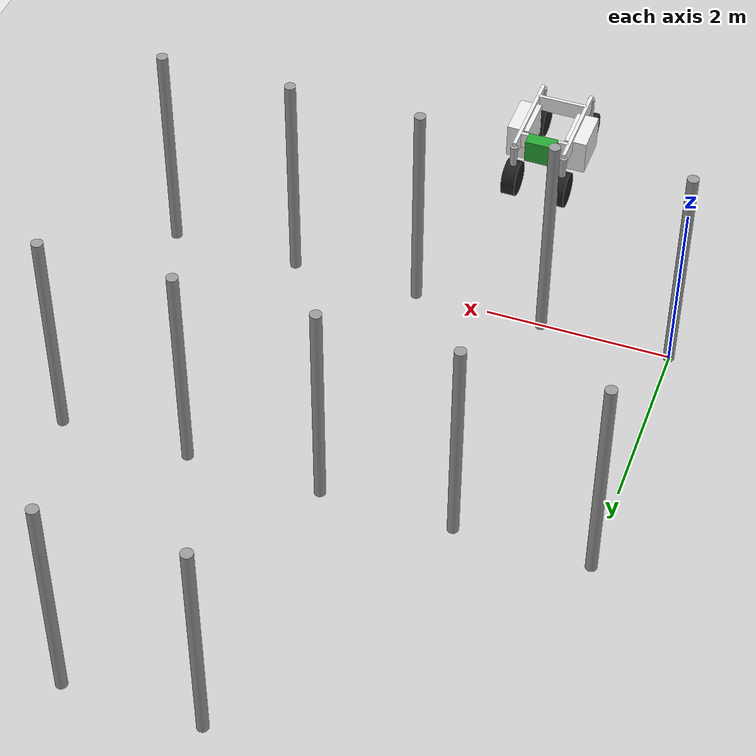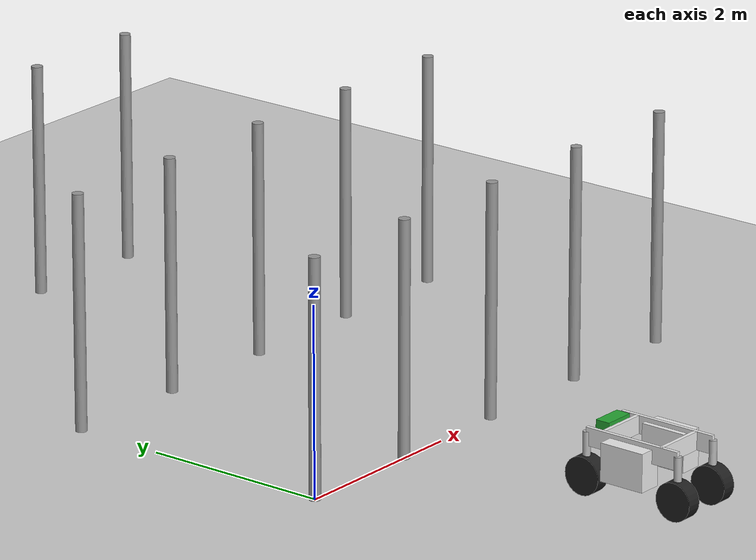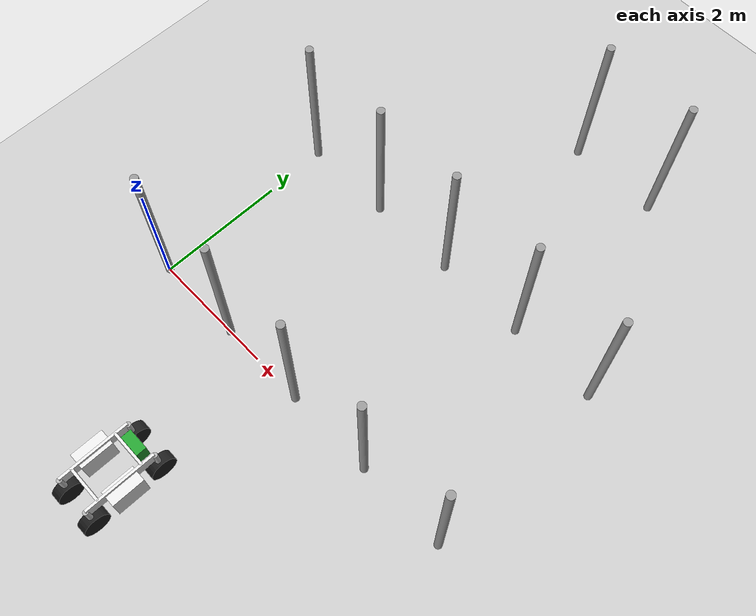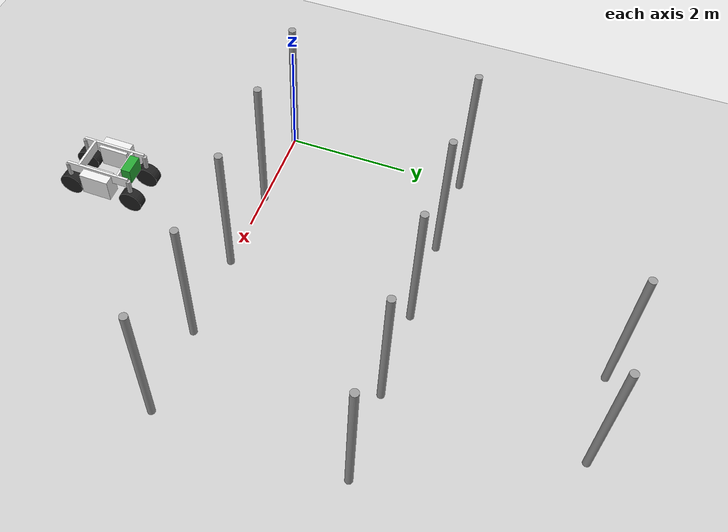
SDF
<sdf version="1.6">
 <world name="default">
  <model name="ground_plane">
   <static>1</static>
   <link name="link">
    <collision name="collision">
     <geometry><plane><normal>0 0 1</normal><size>100 100</size></plane></geometry>
     <surface><friction><ode><mu>100</mu><mu2>50</mu2></ode></friction></surface>
    </collision>
    <visual name="visual">
     <cast_shadows>0</cast_shadows>
     <geometry><plane><normal>0 0 1</normal><size>100 100</size></plane></geometry>
     <material>
      <script><uri>file://media/materials/scripts/gazebo.material</uri><name>Gazebo/Grey</name></script>
     </material>
    </visual>
   </link>
  </model>
  <model name="pole_8">
   <link name="link_0">
    <inertial>
     <mass>0.0364582</mass>
     <inertia>
      <ixx>0.00312124</ixx>
      <ixy>0</ixy>
      <ixz>0</ixz>
      <iyy>0.00312124</iyy>
      <iyz>0</iyz>
      <izz>0.00016615</izz>
     </inertia>
    </inertial>
    <visual name="visual">
     <geometry><cylinder><radius>0.06</radius><length>2.5</length></cylinder></geometry>
     <material>
      <lighting>1</lighting>
      <script><uri>file://media/materials/scripts/gazebo.material</uri><name>Gazebo/Grey</name></script>
      <ambient>0.3 0.3 0.3 1</ambient>
      <diffuse>0.7 0.7 0.7 1</diffuse>
      <specular>0.01 0.01 0.01 1</specular>
      <emissive>0 0 0 1</emissive>
      <shader type="vertex"><normal_map>__default__</normal_map></shader>
     </material>
    </visual>
    <collision name="collision">
     <geometry><cylinder><radius>0.06</radius><length>2.5</length></cylinder></geometry>
     <surface>
      <friction>
       <ode><mu>1</mu><mu2>1</mu2><fdir1>0 0 0</fdir1><slip1>0</slip1><slip2>0</slip2></ode>
       <torsional>
        <coefficient>1</coefficient>
        <patch_radius>0</patch_radius>
        <surface_radius>0</surface_radius>
        <use_patch_radius>1</use_patch_radius>
        <ode><slip>0</slip></ode>
       </torsional>
      </friction>
      <bounce><restitution_coefficient>0</restitution_coefficient><threshold>1e+06</threshold></bounce>
      <contact>
       <collide_without_contact>0</collide_without_contact>
       <collide_without_contact_bitmask>1</collide_without_contact_bitmask>
       <collide_bitmask>1</collide_bitmask>
       <ode>
        <soft_cfm>0</soft_cfm>
        <soft_erp>0.2</soft_erp>
        <kp>1e+13</kp>
        <kd>1</kd>
        <max_vel>0.01</max_vel>
        <min_depth>0</min_depth>
       </ode>
       <bullet>
        <split_impulse>1</split_impulse>
        <split_impulse_penetration_threshold>-0.01</split_impulse_penetration_threshold>
        <soft_cfm>0</soft_cfm>
        <soft_erp>0.2</soft_erp>
        <kp>1e+13</kp>
        <kd>1</kd>
       </bullet>
      </contact>
     </surface>
    </collision>
   </link>
   <static>0</static>
   <pose>1.40419 0.001283 1.24999 -1e-06 1e-06 -0.017259</pose>
  </model>
  <model name="pole_9">
   <link name="link_0">
    <inertial>
     <mass>0.0364582</mass>
     <inertia>
      <ixx>0.00312124</ixx>
      <ixy>0</ixy>
      <ixz>0</ixz>
      <iyy>0.00312124</iyy>
      <iyz>0</iyz>
      <izz>0.00016615</izz>
     </inertia>
    </inertial>
    <visual name="visual">
     <geometry><cylinder><radius>0.06</radius><length>2.5</length></cylinder></geometry>
     <material>
      <lighting>1</lighting>
      <script><uri>file://media/materials/scripts/gazebo.material</uri><name>Gazebo/Grey</name></script>
      <ambient>0.3 0.3 0.3 1</ambient>
      <diffuse>0.7 0.7 0.7 1</diffuse>
      <specular>0.01 0.01 0.01 1</specular>
      <emissive>0 0 0 1</emissive>
      <shader type="vertex"><normal_map>__default__</normal_map></shader>
     </material>
    </visual>
    <collision name="collision">
     <geometry><cylinder><radius>0.06</radius><length>2.5</length></cylinder></geometry>
     <surface>
      <friction>
       <ode><mu>1</mu><mu2>1</mu2><fdir1>0 0 0</fdir1><slip1>0</slip1><slip2>0</slip2></ode>
       <torsional>
        <coefficient>1</coefficient>
        <patch_radius>0</patch_radius>
        <surface_radius>0</surface_radius>
        <use_patch_radius>1</use_patch_radius>
        <ode><slip>0</slip></ode>
       </torsional>
      </friction>
      <bounce><restitution_coefficient>0</restitution_coefficient><threshold>1e+06</threshold></bounce>
      <contact>
       <collide_without_contact>0</collide_without_contact>
       <collide_without_contact_bitmask>1</collide_without_contact_bitmask>
       <collide_bitmask>1</collide_bitmask>
       <ode>
        <soft_cfm>0</soft_cfm>
        <soft_erp>0.2</soft_erp>
        <kp>1e+13</kp>
        <kd>1</kd>
        <max_vel>0.01</max_vel>
        <min_depth>0</min_depth>
       </ode>
       <bullet>
        <split_impulse>1</split_impulse>
        <split_impulse_penetration_threshold>-0.01</split_impulse_penetration_threshold>
        <soft_cfm>0</soft_cfm>
        <soft_erp>0.2</soft_erp>
        <kp>1e+13</kp>
        <kd>1</kd>
       </bullet>
      </contact>
     </surface>
    </collision>
   </link>
   <static>0</static>
   <pose>2.80802 0.001483 1.25 -1e-06 1e-06 -0.036878</pose>
  </model>
  <model name="pole_10">
   <link name="link_0">
    <inertial>
     <mass>0.0364582</mass>
     <inertia>
      <ixx>0.00312124</ixx>
      <ixy>0</ixy>
      <ixz>0</ixz>
      <iyy>0.00312124</iyy>
      <iyz>0</iyz>
      <izz>0.00016615</izz>
     </inertia>
    </inertial>
    <visual name="visual">
     <geometry><cylinder><radius>0.06</radius><length>2.5</length></cylinder></geometry>
     <material>
      <lighting>1</lighting>
      <script><uri>file://media/materials/scripts/gazebo.material</uri><name>Gazebo/Grey</name></script>
      <ambient>0.3 0.3 0.3 1</ambient>
      <diffuse>0.7 0.7 0.7 1</diffuse>
      <specular>0.01 0.01 0.01 1</specular>
      <emissive>0 0 0 1</emissive>
      <shader type="vertex"><normal_map>__default__</normal_map></shader>
     </material>
    </visual>
    <collision name="collision">
     <geometry><cylinder><radius>0.06</radius><length>2.5</length></cylinder></geometry>
     <surface>
      <friction>
       <ode><mu>1</mu><mu2>1</mu2><fdir1>0 0 0</fdir1><slip1>0</slip1><slip2>0</slip2></ode>
       <torsional>
        <coefficient>1</coefficient>
        <patch_radius>0</patch_radius>
        <surface_radius>0</surface_radius>
        <use_patch_radius>1</use_patch_radius>
        <ode><slip>0</slip></ode>
       </torsional>
      </friction>
      <bounce><restitution_coefficient>0</restitution_coefficient><threshold>1e+06</threshold></bounce>
      <contact>
       <collide_without_contact>0</collide_without_contact>
       <collide_without_contact_bitmask>1</collide_without_contact_bitmask>
       <collide_bitmask>1</collide_bitmask>
       <ode>
        <soft_cfm>0</soft_cfm>
        <soft_erp>0.2</soft_erp>
        <kp>1e+13</kp>
        <kd>1</kd>
        <max_vel>0.01</max_vel>
        <min_depth>0</min_depth>
       </ode>
       <bullet>
        <split_impulse>1</split_impulse>
        <split_impulse_penetration_threshold>-0.01</split_impulse_penetration_threshold>
        <soft_cfm>0</soft_cfm>
        <soft_erp>0.2</soft_erp>
        <kp>1e+13</kp>
        <kd>1</kd>
       </bullet>
      </contact>
     </surface>
    </collision>
   </link>
   <static>0</static>
   <pose>4.20396 0.001651 1.24999 0 1e-06 -0.020503</pose>
  </model>
  <model name="pole_11">
   <link name="link_0">
    <inertial>
     <mass>0.0364582</mass>
     <inertia>
      <ixx>0.00312124</ixx>
      <ixy>0</ixy>
      <ixz>0</ixz>
      <iyy>0.00312124</iyy>
      <iyz>0</iyz>
      <izz>0.00016615</izz>
     </inertia>
    </inertial>
    <visual name="visual">
     <geometry><cylinder><radius>0.06</radius><length>2.5</length></cylinder></geometry>
     <material>
      <lighting>1</lighting>
      <script><uri>file://media/materials/scripts/gazebo.material</uri><name>Gazebo/Grey</name></script>
      <ambient>0.3 0.3 0.3 1</ambient>
      <diffuse>0.7 0.7 0.7 1</diffuse>
      <specular>0.01 0.01 0.01 1</specular>
      <emissive>0 0 0 1</emissive>
      <shader type="vertex"><normal_map>__default__</normal_map></shader>
     </material>
    </visual>
    <collision name="collision">
     <geometry><cylinder><radius>0.06</radius><length>2.5</length></cylinder></geometry>
     <surface>
      <friction>
       <ode><mu>1</mu><mu2>1</mu2><fdir1>0 0 0</fdir1><slip1>0</slip1><slip2>0</slip2></ode>
       <torsional>
        <coefficient>1</coefficient>
        <patch_radius>0</patch_radius>
        <surface_radius>0</surface_radius>
        <use_patch_radius>1</use_patch_radius>
        <ode><slip>0</slip></ode>
       </torsional>
      </friction>
      <bounce><restitution_coefficient>0</restitution_coefficient><threshold>1e+06</threshold></bounce>
      <contact>
       <collide_without_contact>0</collide_without_contact>
       <collide_without_contact_bitmask>1</collide_without_contact_bitmask>
       <collide_bitmask>1</collide_bitmask>
       <ode>
        <soft_cfm>0</soft_cfm>
        <soft_erp>0.2</soft_erp>
        <kp>1e+13</kp>
        <kd>1</kd>
        <max_vel>0.01</max_vel>
        <min_depth>0</min_depth>
       </ode>
       <bullet>
        <split_impulse>1</split_impulse>
        <split_impulse_penetration_threshold>-0.01</split_impulse_penetration_threshold>
        <soft_cfm>0</soft_cfm>
        <soft_erp>0.2</soft_erp>
        <kp>1e+13</kp>
        <kd>1</kd>
       </bullet>
      </contact>
     </surface>
    </collision>
   </link>
   <static>0</static>
   <pose>5.6162 0.001157 1.25 -1e-06 -0 -0.017961</pose>
  </model>
  <model name="pole_11_clone">
   <link name="link_0">
    <inertial>
     <mass>0.0364582</mass>
     <inertia>
      <ixx>0.00312124</ixx>
      <ixy>0</ixy>
      <ixz>0</ixz>
      <iyy>0.00312124</iyy>
      <iyz>0</iyz>
      <izz>0.00016615</izz>
     </inertia>
    </inertial>
    <visual name="visual">
     <geometry><cylinder><radius>0.06</radius><length>2.5</length></cylinder></geometry>
     <material>
      <lighting>1</lighting>
      <script><uri>file://media/materials/scripts/gazebo.material</uri><name>Gazebo/Grey</name></script>
      <ambient>0.3 0.3 0.3 1</ambient>
      <diffuse>0.7 0.7 0.7 1</diffuse>
      <specular>0.01 0.01 0.01 1</specular>
      <emissive>0 0 0 1</emissive>
      <shader type="vertex"><normal_map>__default__</normal_map></shader>
     </material>
    </visual>
    <collision name="collision">
     <geometry><cylinder><radius>0.06</radius><length>2.5</length></cylinder></geometry>
     <surface>
      <friction>
       <ode><mu>1</mu><mu2>1</mu2><fdir1>0 0 0</fdir1><slip1>0</slip1><slip2>0</slip2></ode>
       <torsional>
        <coefficient>1</coefficient>
        <patch_radius>0</patch_radius>
        <surface_radius>0</surface_radius>
        <use_patch_radius>1</use_patch_radius>
        <ode><slip>0</slip></ode>
       </torsional>
      </friction>
      <bounce><restitution_coefficient>0</restitution_coefficient><threshold>1e+06</threshold></bounce>
      <contact>
       <collide_without_contact>0</collide_without_contact>
       <collide_without_contact_bitmask>1</collide_without_contact_bitmask>
       <collide_bitmask>1</collide_bitmask>
       <ode>
        <soft_cfm>0</soft_cfm>
        <soft_erp>0.2</soft_erp>
        <kp>1e+13</kp>
        <kd>1</kd>
        <max_vel>0.01</max_vel>
        <min_depth>0</min_depth>
       </ode>
       <bullet>
        <split_impulse>1</split_impulse>
        <split_impulse_penetration_threshold>-0.01</split_impulse_penetration_threshold>
        <soft_cfm>0</soft_cfm>
        <soft_erp>0.2</soft_erp>
        <kp>1e+13</kp>
        <kd>1</kd>
       </bullet>
      </contact>
     </surface>
    </collision>
   </link>
   <static>0</static>
   <pose>0.000202 2.9815 1.24999 -0 1e-06 -0.017039</pose>
  </model>
  <model name="pole_3">
   <link name="link_0">
    <inertial>
     <mass>0.0364582</mass>
     <inertia>
      <ixx>0.00312124</ixx>
      <ixy>0</ixy>
      <ixz>0</ixz>
      <iyy>0.00312124</iyy>
      <iyz>0</iyz>
      <izz>0.00016615</izz>
     </inertia>
    </inertial>
    <visual name="visual">
     <geometry><cylinder><radius>0.06</radius><length>2.5</length></cylinder></geometry>
     <material>
      <lighting>1</lighting>
      <script><uri>file://media/materials/scripts/gazebo.material</uri><name>Gazebo/Grey</name></script>
      <ambient>0.3 0.3 0.3 1</ambient>
      <diffuse>0.7 0.7 0.7 1</diffuse>
      <specular>0.01 0.01 0.01 1</specular>
      <emissive>0 0 0 1</emissive>
      <shader type="vertex"><normal_map>__default__</normal_map></shader>
     </material>
    </visual>
    <collision name="collision">
     <geometry><cylinder><radius>0.06</radius><length>2.5</length></cylinder></geometry>
     <surface>
      <friction>
       <ode><mu>1</mu><mu2>1</mu2><fdir1>0 0 0</fdir1><slip1>0</slip1><slip2>0</slip2></ode>
       <torsional>
        <coefficient>1</coefficient>
        <patch_radius>0</patch_radius>
        <surface_radius>0</surface_radius>
        <use_patch_radius>1</use_patch_radius>
        <ode><slip>0</slip></ode>
       </torsional>
      </friction>
      <bounce><restitution_coefficient>0</restitution_coefficient><threshold>1e+06</threshold></bounce>
      <contact>
       <collide_without_contact>0</collide_without_contact>
       <collide_without_contact_bitmask>1</collide_without_contact_bitmask>
       <collide_bitmask>1</collide_bitmask>
       <ode>
        <soft_cfm>0</soft_cfm>
        <soft_erp>0.2</soft_erp>
        <kp>1e+13</kp>
        <kd>1</kd>
        <max_vel>0.01</max_vel>
        <min_depth>0</min_depth>
       </ode>
       <bullet>
        <split_impulse>1</split_impulse>
        <split_impulse_penetration_threshold>-0.01</split_impulse_penetration_threshold>
        <soft_cfm>0</soft_cfm>
        <soft_erp>0.2</soft_erp>
        <kp>1e+13</kp>
        <kd>1</kd>
       </bullet>
      </contact>
     </surface>
    </collision>
   </link>
   <static>0</static>
   <pose>1.4047 2.98102 1.25 -1e-06 1e-06 -0.013695</pose>
  </model>
  <model name="pole_5">
   <link name="link_0">
    <inertial>
     <mass>0.0364582</mass>
     <inertia>
      <ixx>0.00312124</ixx>
      <ixy>0</ixy>
      <ixz>0</ixz>
      <iyy>0.00312124</iyy>
      <iyz>0</iyz>
      <izz>0.00016615</izz>
     </inertia>
    </inertial>
    <visual name="visual">
     <geometry><cylinder><radius>0.06</radius><length>2.5</length></cylinder></geometry>
     <material>
      <lighting>1</lighting>
      <script><uri>file://media/materials/scripts/gazebo.material</uri><name>Gazebo/Grey</name></script>
      <ambient>0.3 0.3 0.3 1</ambient>
      <diffuse>0.7 0.7 0.7 1</diffuse>
      <specular>0.01 0.01 0.01 1</specular>
      <emissive>0 0 0 1</emissive>
      <shader type="vertex"><normal_map>__default__</normal_map></shader>
     </material>
    </visual>
    <collision name="collision">
     <geometry><cylinder><radius>0.06</radius><length>2.5</length></cylinder></geometry>
     <surface>
      <friction>
       <ode><mu>1</mu><mu2>1</mu2><fdir1>0 0 0</fdir1><slip1>0</slip1><slip2>0</slip2></ode>
       <torsional>
        <coefficient>1</coefficient>
        <patch_radius>0</patch_radius>
        <surface_radius>0</surface_radius>
        <use_patch_radius>1</use_patch_radius>
        <ode><slip>0</slip></ode>
       </torsional>
      </friction>
      <bounce><restitution_coefficient>0</restitution_coefficient><threshold>1e+06</threshold></bounce>
      <contact>
       <collide_without_contact>0</collide_without_contact>
       <collide_without_contact_bitmask>1</collide_without_contact_bitmask>
       <collide_bitmask>1</collide_bitmask>
       <ode>
        <soft_cfm>0</soft_cfm>
        <soft_erp>0.2</soft_erp>
        <kp>1e+13</kp>
        <kd>1</kd>
        <max_vel>0.01</max_vel>
        <min_depth>0</min_depth>
       </ode>
       <bullet>
        <split_impulse>1</split_impulse>
        <split_impulse_penetration_threshold>-0.01</split_impulse_penetration_threshold>
        <soft_cfm>0</soft_cfm>
        <soft_erp>0.2</soft_erp>
        <kp>1e+13</kp>
        <kd>1</kd>
       </bullet>
      </contact>
     </surface>
    </collision>
   </link>
   <static>0</static>
   <pose>2.7958 2.98105 1.24999 1e-06 2e-06 -0.012357</pose>
  </model>
  <model name="pole_6">
   <link name="link_0">
    <inertial>
     <mass>0.0364582</mass>
     <inertia>
      <ixx>0.00312124</ixx>
      <ixy>0</ixy>
      <ixz>0</ixz>
      <iyy>0.00312124</iyy>
      <iyz>0</iyz>
      <izz>0.00016615</izz>
     </inertia>
    </inertial>
    <visual name="visual">
     <geometry><cylinder><radius>0.06</radius><length>2.5</length></cylinder></geometry>
     <material>
      <lighting>1</lighting>
      <script><uri>file://media/materials/scripts/gazebo.material</uri><name>Gazebo/Grey</name></script>
      <ambient>0.3 0.3 0.3 1</ambient>
      <diffuse>0.7 0.7 0.7 1</diffuse>
      <specular>0.01 0.01 0.01 1</specular>
      <emissive>0 0 0 1</emissive>
      <shader type="vertex"><normal_map>__default__</normal_map></shader>
     </material>
    </visual>
    <collision name="collision">
     <geometry><cylinder><radius>0.06</radius><length>2.5</length></cylinder></geometry>
     <surface>
      <friction>
       <ode><mu>1</mu><mu2>1</mu2><fdir1>0 0 0</fdir1><slip1>0</slip1><slip2>0</slip2></ode>
       <torsional>
        <coefficient>1</coefficient>
        <patch_radius>0</patch_radius>
        <surface_radius>0</surface_radius>
        <use_patch_radius>1</use_patch_radius>
        <ode><slip>0</slip></ode>
       </torsional>
      </friction>
      <bounce><restitution_coefficient>0</restitution_coefficient><threshold>1e+06</threshold></bounce>
      <contact>
       <collide_without_contact>0</collide_without_contact>
       <collide_without_contact_bitmask>1</collide_without_contact_bitmask>
       <collide_bitmask>1</collide_bitmask>
       <ode>
        <soft_cfm>0</soft_cfm>
        <soft_erp>0.2</soft_erp>
        <kp>1e+13</kp>
        <kd>1</kd>
        <max_vel>0.01</max_vel>
        <min_depth>0</min_depth>
       </ode>
       <bullet>
        <split_impulse>1</split_impulse>
        <split_impulse_penetration_threshold>-0.01</split_impulse_penetration_threshold>
        <soft_cfm>0</soft_cfm>
        <soft_erp>0.2</soft_erp>
        <kp>1e+13</kp>
        <kd>1</kd>
       </bullet>
      </contact>
     </surface>
    </collision>
   </link>
   <static>0</static>
   <pose>4.22238 2.98098 1.24999 0 -1e-06 -0.012191</pose>
  </model>
  <model name="pole_7">
   <link name="link_0">
    <inertial>
     <mass>0.0364582</mass>
     <inertia>
      <ixx>0.00312124</ixx>
      <ixy>0</ixy>
      <ixz>0</ixz>
      <iyy>0.00312124</iyy>
      <iyz>0</iyz>
      <izz>0.00016615</izz>
     </inertia>
    </inertial>
    <visual name="visual">
     <geometry><cylinder><radius>0.06</radius><length>2.5</length></cylinder></geometry>
     <material>
      <lighting>1</lighting>
      <script><uri>file://media/materials/scripts/gazebo.material</uri><name>Gazebo/Grey</name></script>
      <ambient>0.3 0.3 0.3 1</ambient>
      <diffuse>0.7 0.7 0.7 1</diffuse>
      <specular>0.01 0.01 0.01 1</specular>
      <emissive>0 0 0 1</emissive>
      <shader type="vertex"><normal_map>__default__</normal_map></shader>
     </material>
    </visual>
    <collision name="collision">
     <geometry><cylinder><radius>0.06</radius><length>2.5</length></cylinder></geometry>
     <surface>
      <friction>
       <ode><mu>1</mu><mu2>1</mu2><fdir1>0 0 0</fdir1><slip1>0</slip1><slip2>0</slip2></ode>
       <torsional>
        <coefficient>1</coefficient>
        <patch_radius>0</patch_radius>
        <surface_radius>0</surface_radius>
        <use_patch_radius>1</use_patch_radius>
        <ode><slip>0</slip></ode>
       </torsional>
      </friction>
      <bounce><restitution_coefficient>0</restitution_coefficient><threshold>1e+06</threshold></bounce>
      <contact>
       <collide_without_contact>0</collide_without_contact>
       <collide_without_contact_bitmask>1</collide_without_contact_bitmask>
       <collide_bitmask>1</collide_bitmask>
       <ode>
        <soft_cfm>0</soft_cfm>
        <soft_erp>0.2</soft_erp>
        <kp>1e+13</kp>
        <kd>1</kd>
        <max_vel>0.01</max_vel>
        <min_depth>0</min_depth>
       </ode>
       <bullet>
        <split_impulse>1</split_impulse>
        <split_impulse_penetration_threshold>-0.01</split_impulse_penetration_threshold>
        <soft_cfm>0</soft_cfm>
        <soft_erp>0.2</soft_erp>
        <kp>1e+13</kp>
        <kd>1</kd>
       </bullet>
      </contact>
     </surface>
    </collision>
   </link>
   <static>0</static>
   <pose>5.6073 2.98107 1.24999 0 0 -0.010741</pose>
  </model>
  <model name="pole_13">
   <link name="link_0">
    <inertial>
     <mass>0.0364582</mass>
     <inertia>
      <ixx>0.00312124</ixx>
      <ixy>0</ixy>
      <ixz>0</ixz>
      <iyy>0.00312124</iyy>
      <iyz>0</iyz>
      <izz>0.00016615</izz>
     </inertia>
    </inertial>
    <visual name="visual">
     <geometry><cylinder><radius>0.06</radius><length>2.5</length></cylinder></geometry>
     <material>
      <lighting>1</lighting>
      <script><uri>file://media/materials/scripts/gazebo.material</uri><name>Gazebo/Grey</name></script>
      <ambient>0.3 0.3 0.3 1</ambient>
      <diffuse>0.7 0.7 0.7 1</diffuse>
      <specular>0.01 0.01 0.01 1</specular>
      <emissive>0 0 0 1</emissive>
      <shader type="vertex"><normal_map>__default__</normal_map></shader>
     </material>
    </visual>
    <collision name="collision">
     <geometry><cylinder><radius>0.06</radius><length>2.5</length></cylinder></geometry>
     <surface>
      <friction>
       <ode><mu>1</mu><mu2>1</mu2><fdir1>0 0 0</fdir1><slip1>0</slip1><slip2>0</slip2></ode>
       <torsional>
        <coefficient>1</coefficient>
        <patch_radius>0</patch_radius>
        <surface_radius>0</surface_radius>
        <use_patch_radius>1</use_patch_radius>
        <ode><slip>0</slip></ode>
       </torsional>
      </friction>
      <bounce><restitution_coefficient>0</restitution_coefficient><threshold>1e+06</threshold></bounce>
      <contact>
       <collide_without_contact>0</collide_without_contact>
       <collide_without_contact_bitmask>1</collide_without_contact_bitmask>
       <collide_bitmask>1</collide_bitmask>
       <ode>
        <soft_cfm>0</soft_cfm>
        <soft_erp>0.2</soft_erp>
        <kp>1e+13</kp>
        <kd>1</kd>
        <max_vel>0.01</max_vel>
        <min_depth>0</min_depth>
       </ode>
       <bullet>
        <split_impulse>1</split_impulse>
        <split_impulse_penetration_threshold>-0.01</split_impulse_penetration_threshold>
        <soft_cfm>0</soft_cfm>
        <soft_erp>0.2</soft_erp>
        <kp>1e+13</kp>
        <kd>1</kd>
       </bullet>
      </contact>
     </surface>
    </collision>
   </link>
   <static>0</static>
   <pose>2.80797 5.96087 1.25 -1e-06 0 -0.00842</pose>
  </model>
  <model name="pole_14">
   <link name="link_0">
    <inertial>
     <mass>0.0364582</mass>
     <inertia>
      <ixx>0.00312124</ixx>
      <ixy>0</ixy>
      <ixz>0</ixz>
      <iyy>0.00312124</iyy>
      <iyz>0</iyz>
      <izz>0.00016615</izz>
     </inertia>
    </inertial>
    <visual name="visual">
     <geometry><cylinder><radius>0.06</radius><length>2.5</length></cylinder></geometry>
     <material>
      <lighting>1</lighting>
      <script><uri>file://media/materials/scripts/gazebo.material</uri><name>Gazebo/Grey</name></script>
      <ambient>0.3 0.3 0.3 1</ambient>
      <diffuse>0.7 0.7 0.7 1</diffuse>
      <specular>0.01 0.01 0.01 1</specular>
      <emissive>0 0 0 1</emissive>
      <shader type="vertex"><normal_map>__default__</normal_map></shader>
     </material>
    </visual>
    <collision name="collision">
     <geometry><cylinder><radius>0.06</radius><length>2.5</length></cylinder></geometry>
     <surface>
      <friction>
       <ode><mu>1</mu><mu2>1</mu2><fdir1>0 0 0</fdir1><slip1>0</slip1><slip2>0</slip2></ode>
       <torsional>
        <coefficient>1</coefficient>
        <patch_radius>0</patch_radius>
        <surface_radius>0</surface_radius>
        <use_patch_radius>1</use_patch_radius>
        <ode><slip>0</slip></ode>
       </torsional>
      </friction>
      <bounce><restitution_coefficient>0</restitution_coefficient><threshold>1e+06</threshold></bounce>
      <contact>
       <collide_without_contact>0</collide_without_contact>
       <collide_without_contact_bitmask>1</collide_without_contact_bitmask>
       <collide_bitmask>1</collide_bitmask>
       <ode>
        <soft_cfm>0</soft_cfm>
        <soft_erp>0.2</soft_erp>
        <kp>1e+13</kp>
        <kd>1</kd>
        <max_vel>0.01</max_vel>
        <min_depth>0</min_depth>
       </ode>
       <bullet>
        <split_impulse>1</split_impulse>
        <split_impulse_penetration_threshold>-0.01</split_impulse_penetration_threshold>
        <soft_cfm>0</soft_cfm>
        <soft_erp>0.2</soft_erp>
        <kp>1e+13</kp>
        <kd>1</kd>
       </bullet>
      </contact>
     </surface>
    </collision>
   </link>
   <static>0</static>
   <pose>4.21949 5.96097 1.24999 -1e-06 -0 -0.009738</pose>
  </model>
  <model name="thorvald_phenotyping">
   <link name="front_frame">
    <inertial>
     <pose>-0.486949 0 -0.042757 0 -0 0</pose>
     <mass>44.3428</mass>
     <inertia>
      <ixx>22.1052</ixx>
      <ixy>3.159</ixy>
      <ixz>4.75844</ixz>
      <iyy>21.4953</iyy>
      <iyz>7.54392</iyz>
      <izz>16.1935</izz>
     </inertia>
    </inertial>
    <collision name="front_frame_fixed_joint_lump__front_link_collision">
     <pose>-0.2 0 0 0 -0 0</pose>
     <geometry><box><size>0.04 0.57 0.19</size></box></geometry>
    </collision>
    <collision name="front_frame_fixed_joint_lump__frame_left_link_collision_1">
     <pose>-0.5475 0.285 0 0 -0 0</pose>
     <geometry><box><size>1.095 0.04 0.19</size></box></geometry>
    </collision>
    <collision name="front_frame_fixed_joint_lump__left_battery_link_collision_2">
     <pose>-0.5475 0.335 -0.15 0 -0 0</pose>
     <geometry><box><size>0.5 0.25 0.4</size></box></geometry>
    </collision>
    <collision name="front_frame_fixed_joint_lump__frame_right_link_collision_3">
     <pose>-0.5475 -0.285 0 0 -0 0</pose>
     <geometry><box><size>1.095 0.04 0.19</size></box></geometry>
    </collision>
    <collision name="front_frame_fixed_joint_lump__right_battery_link_collision_4">
     <pose>-0.5475 -0.335 -0.15 0 -0 0</pose>
     <geometry><box><size>0.5 0.25 0.4</size></box></geometry>
    </collision>
    <collision name="front_frame_fixed_joint_lump__sensor_box_link_collision_5">
     <pose>-0.1 0 0 0 -0 0</pose>
     <geometry><box><size>0.159 0.336 0.27</size></box></geometry>
    </collision>
    <collision name="front_frame_fixed_joint_lump__rear_link_collision_6">
     <pose>-0.895 0 0 0 -0 0</pose>
     <geometry><box><size>0.04 0.57 0.19</size></box></geometry>
    </collision>
    <visual name="front_frame_fixed_joint_lump__front_link_visual">
     <pose>-0.2 0 0 0 -0 0</pose>
     <geometry><box><size>0.04 0.57 0.19</size></box></geometry>
     <material>
      <script><name>Gazebo/White</name><uri>file://media/materials/scripts/gazebo.material</uri></script>
     </material>
    </visual>
    <visual name="front_frame_fixed_joint_lump__frame_left_link_visual_1">
     <pose>-0.5475 0.285 0 0 -0 0</pose>
     <geometry><box><size>1.095 0.04 0.19</size></box></geometry>
     <material>
      <script><name>Gazebo/White</name><uri>file://media/materials/scripts/gazebo.material</uri></script>
     </material>
    </visual>
    <visual name="front_frame_fixed_joint_lump__left_battery_link_visual_2">
     <pose>-0.5475 0.335 -0.15 0 -0 0</pose>
     <geometry><box><size>0.5 0.25 0.4</size></box></geometry>
     <material>
      <script><name>Gazebo/White</name><uri>file://media/materials/scripts/gazebo.material</uri></script>
     </material>
    </visual>
    <visual name="front_frame_fixed_joint_lump__frame_right_link_visual_3">
     <pose>-0.5475 -0.285 0 0 -0 0</pose>
     <geometry><box><size>1.095 0.04 0.19</size></box></geometry>
     <material>
      <script><name>Gazebo/White</name><uri>file://media/materials/scripts/gazebo.material</uri></script>
     </material>
    </visual>
    <visual name="front_frame_fixed_joint_lump__right_battery_link_visual_4">
     <pose>-0.5475 -0.335 -0.15 0 -0 0</pose>
     <geometry><box><size>0.5 0.25 0.4</size></box></geometry>
     <material>
      <script><name>Gazebo/White</name><uri>file://media/materials/scripts/gazebo.material</uri></script>
     </material>
    </visual>
    <visual name="front_frame_fixed_joint_lump__sensor_box_link_visual_5">
     <pose>-0.1 0 0 0 -0 0</pose>
     <geometry><box><size>0.159 0.336 0.27</size></box></geometry>
     <material>
      <script><name>Gazebo/Green</name><uri>file://media/materials/scripts/gazebo.material</uri></script>
     </material>
    </visual>
    <visual name="front_frame_fixed_joint_lump__rear_link_visual_6">
     <pose>-0.895 0 0 0 -0 0</pose>
     <geometry><box><size>0.04 0.57 0.19</size></box></geometry>
     <material>
      <script><name>Gazebo/White</name><uri>file://media/materials/scripts/gazebo.material</uri></script>
     </material>
    </visual>
   </link>
   <link name="front_left_leg">
    <pose>0 0.285 -0.2 0 -0 0</pose>
    <inertial>
     <mass>18.0411</mass>
     <inertia>
      <ixx>0.420701</ixx>
      <ixy>-0.0682293</ixy>
      <ixz>0.00112609</ixz>
      <iyy>0.140328</iyy>
      <iyz>0.0416406</iyz>
      <izz>0.371963</izz>
     </inertia>
    </inertial>
    <collision name="front_left_leg_collision">
     <geometry><cylinder><length>0.495</length><radius>0.04</radius></cylinder></geometry>
    </collision>
    <visual name="front_left_leg_visual">
     <geometry><cylinder><length>0.495</length><radius>0.04</radius></cylinder></geometry>
    </visual>
   </link>
   <joint name="steering2" type="revolute">
    <child>front_left_leg</child>
    <parent>front_frame</parent>
    <axis>
     <xyz>0 0 1</xyz>
     <limit><lower>-1e+16</lower><upper>1e+16</upper></limit>
     <dynamics><spring_reference>0</spring_reference><spring_stiffness>0</spring_stiffness></dynamics>
     <use_parent_model_frame>1</use_parent_model_frame>
    </axis>
   </joint>
   <link name="front_left_wheel">
    <pose>0 0.285 -0.4 -1.5708 0 0</pose>
    <inertial>
     <mass>6.38698</mass>
     <inertia>
      <ixx>0.417288</ixx>
      <ixy>-0.00126433</ixy>
      <ixz>0</ixz>
      <iyy>0.0993111</iyy>
      <iyz>-2e-09</iyz>
      <izz>0.35479</izz>
     </inertia>
    </inertial>
    <collision name="front_left_wheel_collision">
     <geometry><cylinder><length>0.16</length><radius>0.2</radius></cylinder></geometry>
    </collision>
    <visual name="front_left_wheel_visual">
     <geometry><cylinder><length>0.16</length><radius>0.2</radius></cylinder></geometry>
     <material>
      <script><name>Gazebo/Black</name><uri>file://media/materials/scripts/gazebo.material</uri></script>
     </material>
    </visual>
   </link>
   <joint name="wheel2" type="revolute">
    <child>front_left_wheel</child>
    <parent>front_left_leg</parent>
    <axis>
     <xyz>0 1 0</xyz>
     <limit><lower>-1e+16</lower><upper>1e+16</upper></limit>
     <dynamics><spring_reference>0</spring_reference><spring_stiffness>0</spring_stiffness></dynamics>
     <use_parent_model_frame>1</use_parent_model_frame>
    </axis>
   </joint>
   <link name="rear_left_leg">
    <pose>-1.095 0.285 -0.2 0 -0 0</pose>
    <inertial>
     <mass>18.0411</mass>
     <inertia>
      <ixx>0.420701</ixx>
      <ixy>-0.0682293</ixy>
      <ixz>0.00112609</ixz>
      <iyy>0.140328</iyy>
      <iyz>0.0416406</iyz>
      <izz>0.371963</izz>
     </inertia>
    </inertial>
    <collision name="rear_left_leg_collision">
     <geometry><cylinder><length>0.495</length><radius>0.04</radius></cylinder></geometry>
    </collision>
    <visual name="rear_left_leg_visual">
     <geometry><cylinder><length>0.495</length><radius>0.04</radius></cylinder></geometry>
    </visual>
   </link>
   <joint name="steering3" type="revolute">
    <child>rear_left_leg</child>
    <parent>front_frame</parent>
    <axis>
     <xyz>0 0 1</xyz>
     <limit><lower>-1e+16</lower><upper>1e+16</upper></limit>
     <dynamics><spring_reference>0</spring_reference><spring_stiffness>0</spring_stiffness></dynamics>
     <use_parent_model_frame>1</use_parent_model_frame>
    </axis>
   </joint>
   <link name="rear_left_wheel">
    <pose>-1.095 0.285 -0.4 -1.5708 0 0</pose>
    <inertial>
     <mass>6.38698</mass>
     <inertia>
      <ixx>0.417288</ixx>
      <ixy>-0.00126433</ixy>
      <ixz>0</ixz>
      <iyy>0.0993111</iyy>
      <iyz>-2e-09</iyz>
      <izz>0.35479</izz>
     </inertia>
    </inertial>
    <collision name="rear_left_wheel_collision">
     <geometry><cylinder><length>0.16</length><radius>0.2</radius></cylinder></geometry>
    </collision>
    <visual name="rear_left_wheel_visual">
     <geometry><cylinder><length>0.16</length><radius>0.2</radius></cylinder></geometry>
     <material>
      <script><name>Gazebo/Black</name><uri>file://media/materials/scripts/gazebo.material</uri></script>
     </material>
    </visual>
   </link>
   <joint name="wheel3" type="revolute">
    <child>rear_left_wheel</child>
    <parent>rear_left_leg</parent>
    <axis>
     <xyz>0 1 0</xyz>
     <limit><lower>-1e+16</lower><upper>1e+16</upper></limit>
     <dynamics><spring_reference>0</spring_reference><spring_stiffness>0</spring_stiffness></dynamics>
     <use_parent_model_frame>1</use_parent_model_frame>
    </axis>
   </joint>
   <link name="rear_right_leg">
    <pose>-1.095 -0.285 -0.2 0 -0 0</pose>
    <inertial>
     <mass>18.0411</mass>
     <inertia>
      <ixx>0.420701</ixx>
      <ixy>-0.0682293</ixy>
      <ixz>0.00112609</ixz>
      <iyy>0.140328</iyy>
      <iyz>0.0416406</iyz>
      <izz>0.371963</izz>
     </inertia>
    </inertial>
    <collision name="rear_right_leg_collision">
     <geometry><cylinder><length>0.495</length><radius>0.04</radius></cylinder></geometry>
    </collision>
    <visual name="rear_right_leg_visual">
     <geometry><cylinder><length>0.495</length><radius>0.04</radius></cylinder></geometry>
    </visual>
   </link>
   <joint name="steering0" type="revolute">
    <child>rear_right_leg</child>
    <parent>front_frame</parent>
    <axis>
     <xyz>0 0 1</xyz>
     <limit><lower>-1e+16</lower><upper>1e+16</upper></limit>
     <dynamics><spring_reference>0</spring_reference><spring_stiffness>0</spring_stiffness></dynamics>
     <use_parent_model_frame>1</use_parent_model_frame>
    </axis>
   </joint>
   <link name="rear_right_wheel">
    <pose>-1.095 -0.285 -0.4 -1.5708 0 0</pose>
    <inertial>
     <mass>6.38698</mass>
     <inertia>
      <ixx>0.417288</ixx>
      <ixy>-0.00126433</ixy>
      <ixz>0</ixz>
      <iyy>0.0993111</iyy>
      <iyz>-2e-09</iyz>
      <izz>0.35479</izz>
     </inertia>
    </inertial>
    <collision name="rear_right_wheel_collision">
     <geometry><cylinder><length>0.16</length><radius>0.2</radius></cylinder></geometry>
    </collision>
    <visual name="rear_right_wheel_visual">
     <geometry><cylinder><length>0.16</length><radius>0.2</radius></cylinder></geometry>
     <material>
      <script><name>Gazebo/Black</name><uri>file://media/materials/scripts/gazebo.material</uri></script>
     </material>
    </visual>
   </link>
   <joint name="wheel0" type="revolute">
    <child>rear_right_wheel</child>
    <parent>rear_right_leg</parent>
    <axis>
     <xyz>0 1 0</xyz>
     <limit><lower>-1e+16</lower><upper>1e+16</upper></limit>
     <dynamics><spring_reference>0</spring_reference><spring_stiffness>0</spring_stiffness></dynamics>
     <use_parent_model_frame>1</use_parent_model_frame>
    </axis>
   </joint>
   <link name="front_right_leg">
    <pose>0 -0.285 -0.2 0 -0 0</pose>
    <inertial>
     <mass>18.0411</mass>
     <inertia>
      <ixx>0.420701</ixx>
      <ixy>-0.0682293</ixy>
      <ixz>0.00112609</ixz>
      <iyy>0.140328</iyy>
      <iyz>0.0416406</iyz>
      <izz>0.371963</izz>
     </inertia>
    </inertial>
    <collision name="front_right_leg_collision">
     <geometry><cylinder><length>0.495</length><radius>0.04</radius></cylinder></geometry>
    </collision>
    <visual name="front_right_leg_visual">
     <geometry><cylinder><length>0.495</length><radius>0.04</radius></cylinder></geometry>
    </visual>
   </link>
   <joint name="steering1" type="revolute">
    <child>front_right_leg</child>
    <parent>front_frame</parent>
    <axis>
     <xyz>0 0 1</xyz>
     <limit><lower>-1e+16</lower><upper>1e+16</upper></limit>
     <dynamics><spring_reference>0</spring_reference><spring_stiffness>0</spring_stiffness></dynamics>
     <use_parent_model_frame>1</use_parent_model_frame>
    </axis>
   </joint>
   <link name="front_right_wheel">
    <pose>0 -0.285 -0.4 -1.5708 0 0</pose>
    <inertial>
     <mass>6.38698</mass>
     <inertia>
      <ixx>0.417288</ixx>
      <ixy>-0.00126433</ixy>
      <ixz>0</ixz>
      <iyy>0.0993111</iyy>
      <iyz>-2e-09</iyz>
      <izz>0.35479</izz>
     </inertia>
    </inertial>
    <collision name="front_right_wheel_collision">
     <geometry><cylinder><length>0.16</length><radius>0.2</radius></cylinder></geometry>
    </collision>
    <visual name="front_right_wheel_visual">
     <geometry><cylinder><length>0.16</length><radius>0.2</radius></cylinder></geometry>
     <material>
      <script><name>Gazebo/Black</name><uri>file://media/materials/scripts/gazebo.material</uri></script>
     </material>
    </visual>
   </link>
   <joint name="wheel1" type="revolute">
    <child>front_right_wheel</child>
    <parent>front_right_leg</parent>
    <axis>
     <xyz>0 1 0</xyz>
     <limit><lower>-1e+16</lower><upper>1e+16</upper></limit>
     <dynamics><spring_reference>0</spring_reference><spring_stiffness>0</spring_stiffness></dynamics>
     <use_parent_model_frame>1</use_parent_model_frame>
    </axis>
   </joint>
   <pose>2.05532 -1.96221 0.6 0 -0 1.56199</pose>
  </model>
  <model name="pole_24">
   <link name="link_0">
    <inertial>
     <mass>0.0364582</mass>
     <inertia>
      <ixx>0.00312124</ixx>
      <ixy>0</ixy>
      <ixz>0</ixz>
      <iyy>0.00312124</iyy>
      <iyz>0</iyz>
      <izz>0.00016615</izz>
     </inertia>
    </inertial>
    <visual name="visual">
     <geometry><cylinder><radius>0.06</radius><length>2.5</length></cylinder></geometry>
     <material>
      <lighting>1</lighting>
      <script><uri>file://media/materials/scripts/gazebo.material</uri><name>Gazebo/Grey</name></script>
      <ambient>0.3 0.3 0.3 1</ambient>
      <diffuse>0.7 0.7 0.7 1</diffuse>
      <specular>0.01 0.01 0.01 1</specular>
      <emissive>0 0 0 1</emissive>
      <shader type="vertex"><normal_map>__default__</normal_map></shader>
     </material>
    </visual>
    <collision name="collision">
     <geometry><cylinder><radius>0.06</radius><length>2.5</length></cylinder></geometry>
     <surface>
      <friction>
       <ode><mu>1</mu><mu2>1</mu2><fdir1>0 0 0</fdir1><slip1>0</slip1><slip2>0</slip2></ode>
       <torsional>
        <coefficient>1</coefficient>
        <patch_radius>0</patch_radius>
        <surface_radius>0</surface_radius>
        <use_patch_radius>1</use_patch_radius>
        <ode><slip>0</slip></ode>
       </torsional>
      </friction>
      <bounce><restitution_coefficient>0</restitution_coefficient><threshold>1e+06</threshold></bounce>
      <contact>
       <collide_without_contact>0</collide_without_contact>
       <collide_without_contact_bitmask>1</collide_without_contact_bitmask>
       <collide_bitmask>1</collide_bitmask>
       <ode>
        <soft_cfm>0</soft_cfm>
        <soft_erp>0.2</soft_erp>
        <kp>1e+13</kp>
        <kd>1</kd>
        <max_vel>0.01</max_vel>
        <min_depth>0</min_depth>
       </ode>
       <bullet>
        <split_impulse>1</split_impulse>
        <split_impulse_penetration_threshold>-0.01</split_impulse_penetration_threshold>
        <soft_cfm>0</soft_cfm>
        <soft_erp>0.2</soft_erp>
        <kp>1e+13</kp>
        <kd>1</kd>
       </bullet>
      </contact>
     </surface>
    </collision>
   </link>
   <static>0</static>
   <pose>0.003892 0.000377 1.25 -1e-06 -0 -0.000124</pose>
  </model>
 </world>
</sdf>
